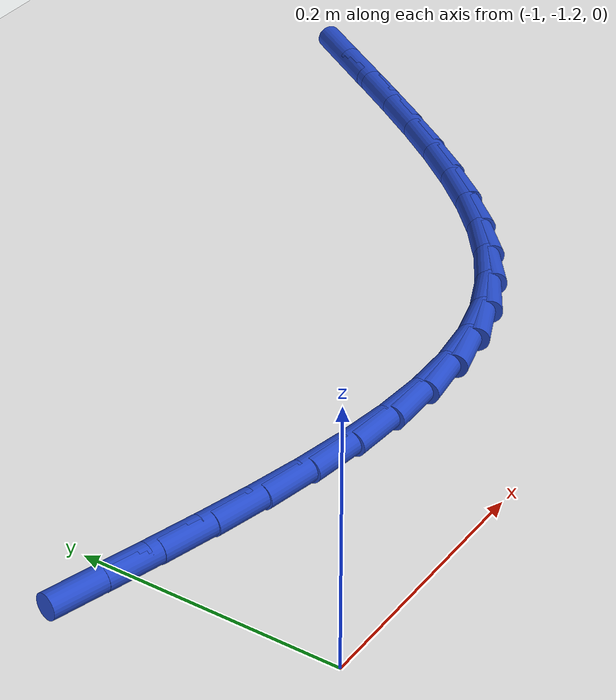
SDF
<sdf version="1.6">
 <world name="default">
  <model name="ground_plane">
   <static>1</static>
   <link name="link">
    <collision name="collision">
     <geometry><plane><normal>0 0 1</normal><size>100 100</size></plane></geometry>
     <surface><friction><ode><mu>100</mu><mu2>50</mu2></ode></friction></surface>
    </collision>
    <visual name="visual">
     <cast_shadows>0</cast_shadows>
     <geometry><plane><normal>0 0 1</normal><size>100 100</size></plane></geometry>
     <material>
      <script><uri>file://media/materials/scripts/gazebo.material</uri><name>Gazebo/WhiteGlow</name></script>
     </material>
    </visual>
   </link>
  </model>
  <model name="line">
   <link name="link_119">
    <pose>-1.0254146268963058 -1.0300677457684595 0.01 0 1.57 -0.2883049057883788</pose>
    <collision name="collision">
     <geometry><cylinder><radius>0.01</radius><length>0.08</length></cylinder></geometry>
    </collision>
    <visual name="visual">
     <material>
      <script><name>Gazebo/Blue</name><uri>file://media/materials/scripts/gazebo.material</uri></script>
     </material>
     <geometry><cylinder><radius>0.01</radius><length>0.08</length></cylinder></geometry>
    </visual>
   </link>
   <link name="link_120">
    <pose>-0.9833025822460596 -1.0425568169589936 0.01 0 1.57 -0.281634078913042</pose>
    <collision name="collision">
     <geometry><cylinder><radius>0.01</radius><length>0.08</length></cylinder></geometry>
    </collision>
    <visual name="visual">
     <material>
      <script><name>Gazebo/Blue</name><uri>file://media/materials/scripts/gazebo.material</uri></script>
     </material>
     <geometry><cylinder><radius>0.01</radius><length>0.08</length></cylinder></geometry>
    </visual>
   </link>
   <link name="link_121">
    <pose>-0.9407242988901833 -1.0548757513631877 0.01 0 1.57 -0.2643406625414252</pose>
    <collision name="collision">
     <geometry><cylinder><radius>0.01</radius><length>0.08</length></cylinder></geometry>
    </collision>
    <visual name="visual">
     <material>
      <script><name>Gazebo/Blue</name><uri>file://media/materials/scripts/gazebo.material</uri></script>
     </material>
     <geometry><cylinder><radius>0.01</radius><length>0.08</length></cylinder></geometry>
    </visual>
   </link>
   <link name="link_122">
    <pose>-0.89797236816318 -1.066447620991229 0.01 0 1.57 -0.23589892087066344</pose>
    <collision name="collision">
     <geometry><cylinder><radius>0.01</radius><length>0.08</length></cylinder></geometry>
    </collision>
    <visual name="visual">
     <material>
      <script><name>Gazebo/Blue</name><uri>file://media/materials/scripts/gazebo.material</uri></script>
     </material>
     <geometry><cylinder><radius>0.01</radius><length>0.08</length></cylinder></geometry>
    </visual>
   </link>
   <link name="link_123">
    <pose>-0.855339381399551 -1.0766954978533052 0.01 0 1.57 -0.19517792124163297</pose>
    <collision name="collision">
     <geometry><cylinder><radius>0.01</radius><length>0.08</length></cylinder></geometry>
    </collision>
    <visual name="visual">
     <material>
      <script><name>Gazebo/Blue</name><uri>file://media/materials/scripts/gazebo.material</uri></script>
     </material>
     <geometry><cylinder><radius>0.01</radius><length>0.08</length></cylinder></geometry>
    </visual>
   </link>
   <link name="link_124">
    <pose>-0.8131179299337976 -1.085042453959604 0.01 0 1.57 -0.14043470362466073</pose>
    <collision name="collision">
     <geometry><cylinder><radius>0.01</radius><length>0.08</length></cylinder></geometry>
    </collision>
    <visual name="visual">
     <material>
      <script><name>Gazebo/Blue</name><uri>file://media/materials/scripts/gazebo.material</uri></script>
     </material>
     <geometry><cylinder><radius>0.01</radius><length>0.08</length></cylinder></geometry>
    </visual>
   </link>
   <link name="link_125">
    <pose>-0.7716006051004213 -1.0909115613203129 0.01 0 1.57 -0.06934294782650299</pose>
    <collision name="collision">
     <geometry><cylinder><radius>0.01</radius><length>0.08</length></cylinder></geometry>
    </collision>
    <visual name="visual">
     <material>
      <script><name>Gazebo/Blue</name><uri>file://media/materials/scripts/gazebo.material</uri></script>
     </material>
     <geometry><cylinder><radius>0.01</radius><length>0.08</length></cylinder></geometry>
    </visual>
   </link>
   <link name="link_126">
    <pose>-0.7310799982339234 -1.0937258919456196 0.01 0 1.57 0.02083173157755188</pose>
    <collision name="collision">
     <geometry><cylinder><radius>0.01</radius><length>0.08</length></cylinder></geometry>
    </collision>
    <visual name="visual">
     <material>
      <script><name>Gazebo/Blue</name><uri>file://media/materials/scripts/gazebo.material</uri></script>
     </material>
     <geometry><cylinder><radius>0.01</radius><length>0.08</length></cylinder></geometry>
    </visual>
   </link>
   <link name="link_127">
    <pose>-0.6918487006688067 -1.0929085178457116 0.01 0 1.57 0.13271038664936582</pose>
    <collision name="collision">
     <geometry><cylinder><radius>0.01</radius><length>0.08</length></cylinder></geometry>
    </collision>
    <visual name="visual">
     <material>
      <script><name>Gazebo/Blue</name><uri>file://media/materials/scripts/gazebo.material</uri></script>
     </material>
     <geometry><cylinder><radius>0.01</radius><length>0.08</length></cylinder></geometry>
    </visual>
   </link>
   <link name="link_128">
    <pose>-0.654199303739572 -1.0878825110307762 0.01 0 1.57 0.2676747650109371</pose>
    <collision name="collision">
     <geometry><cylinder><radius>0.01</radius><length>0.08</length></cylinder></geometry>
    </collision>
    <visual name="visual">
     <material>
      <script><name>Gazebo/Blue</name><uri>file://media/materials/scripts/gazebo.material</uri></script>
     </material>
     <geometry><cylinder><radius>0.01</radius><length>0.08</length></cylinder></geometry>
    </visual>
   </link>
   <link name="link_129">
    <pose>-0.6184243703939921 -1.0780710064300452 0.01 0 1.57 0.4172734666065643</pose>
    <collision name="collision">
     <geometry><cylinder><radius>0.01</radius><length>0.08</length></cylinder></geometry>
    </collision>
    <visual name="visual">
     <material>
      <script><name>Gazebo/Blue</name><uri>file://media/materials/scripts/gazebo.material</uri></script>
     </material>
     <geometry><cylinder><radius>0.01</radius><length>0.08</length></cylinder></geometry>
    </visual>
   </link>
   <link name="link_130">
    <pose>-0.5847129698539327 -1.0631265323006 0.01 0 1.57 0.5542261738812697</pose>
    <collision name="collision">
     <geometry><cylinder><radius>0.01</radius><length>0.08</length></cylinder></geometry>
    </collision>
    <visual name="visual">
     <material>
      <script><name>Gazebo/Blue</name><uri>file://media/materials/scripts/gazebo.material</uri></script>
     </material>
     <geometry><cylinder><radius>0.01</radius><length>0.08</length></cylinder></geometry>
    </visual>
   </link>
   <link name="link_131">
    <pose>-0.5529177287035723 -1.043447340329749 0.01 0 1.57 0.6704434157071164</pose>
    <collision name="collision">
     <geometry><cylinder><radius>0.01</radius><length>0.08</length></cylinder></geometry>
    </collision>
    <visual name="visual">
     <material>
      <script><name>Gazebo/Blue</name><uri>file://media/materials/scripts/gazebo.material</uri></script>
     </material>
     <geometry><cylinder><radius>0.01</radius><length>0.08</length></cylinder></geometry>
    </visual>
   </link>
   <link name="link_132">
    <pose>-0.5228230240084676 -1.0195829569227994 0.01 0 1.57 0.7656227001546723</pose>
    <collision name="collision">
     <geometry><cylinder><radius>0.01</radius><length>0.08</length></cylinder></geometry>
    </collision>
    <visual name="visual">
     <material>
      <script><name>Gazebo/Blue</name><uri>file://media/materials/scripts/gazebo.material</uri></script>
     </material>
     <geometry><cylinder><radius>0.01</radius><length>0.08</length></cylinder></geometry>
    </visual>
   </link>
   <link name="link_133">
    <pose>-0.49421323283417434 -0.992082908485058 0.01 0 1.57 0.8413705729506546</pose>
    <collision name="collision">
     <geometry><cylinder><radius>0.01</radius><length>0.08</length></cylinder></geometry>
    </collision>
    <visual name="visual">
     <material>
      <script><name>Gazebo/Blue</name><uri>file://media/materials/scripts/gazebo.material</uri></script>
     </material>
     <geometry><cylinder><radius>0.01</radius><length>0.08</length></cylinder></geometry>
    </visual>
   </link>
   <link name="link_134">
    <pose>-0.46687273224624815 -0.961496721421832 0.01 0 1.57 0.8999592917167103</pose>
    <collision name="collision">
     <geometry><cylinder><radius>0.01</radius><length>0.08</length></cylinder></geometry>
    </collision>
    <visual name="visual">
     <material>
      <script><name>Gazebo/Blue</name><uri>file://media/materials/scripts/gazebo.material</uri></script>
     </material>
     <geometry><cylinder><radius>0.01</radius><length>0.08</length></cylinder></geometry>
    </visual>
   </link>
   <link name="link_135">
    <pose>-0.4405858993102448 -0.9283739221384277 0.01 0 1.57 0.943597888991565</pose>
    <collision name="collision">
     <geometry><cylinder><radius>0.01</radius><length>0.08</length></cylinder></geometry>
    </collision>
    <visual name="visual">
     <material>
      <script><name>Gazebo/Blue</name><uri>file://media/materials/scripts/gazebo.material</uri></script>
     </material>
     <geometry><cylinder><radius>0.01</radius><length>0.08</length></cylinder></geometry>
    </visual>
   </link>
   <link name="link_136">
    <pose>-0.41513711109171997 -0.8932640370401518 0.01 0 1.57 0.9741043426938448</pose>
    <collision name="collision">
     <geometry><cylinder><radius>0.01</radius><length>0.08</length></cylinder></geometry>
    </collision>
    <visual name="visual">
     <material>
      <script><name>Gazebo/Blue</name><uri>file://media/materials/scripts/gazebo.material</uri></script>
     </material>
     <geometry><cylinder><radius>0.01</radius><length>0.08</length></cylinder></geometry>
    </visual>
   </link>
   <link name="link_137">
    <pose>-0.3903107446562303 -0.8567165925323122 0.01 0 1.57 0.9927983327116154</pose>
    <collision name="collision">
     <geometry><cylinder><radius>0.01</radius><length>0.08</length></cylinder></geometry>
    </collision>
    <visual name="visual">
     <material>
      <script><name>Gazebo/Blue</name><uri>file://media/materials/scripts/gazebo.material</uri></script>
     </material>
     <geometry><cylinder><radius>0.01</radius><length>0.08</length></cylinder></geometry>
    </visual>
   </link>
   <link name="link_138">
    <pose>-0.3658911770693312 -0.8192811150202153 0.01 0 1.57 1.0004876088535797</pose>
    <collision name="collision">
     <geometry><cylinder><radius>0.01</radius><length>0.08</length></cylinder></geometry>
    </collision>
    <visual name="visual">
     <material>
      <script><name>Gazebo/Blue</name><uri>file://media/materials/scripts/gazebo.material</uri></script>
     </material>
     <geometry><cylinder><radius>0.01</radius><length>0.08</length></cylinder></geometry>
    </visual>
   </link>
   <link name="link_139">
    <pose>-0.3416627853965787 -0.7815071309091678 0.01 0 1.57 0.9974793440600865</pose>
    <collision name="collision">
     <geometry><cylinder><radius>0.01</radius><length>0.08</length></cylinder></geometry>
    </collision>
    <visual name="visual">
     <material>
      <script><name>Gazebo/Blue</name><uri>file://media/materials/scripts/gazebo.material</uri></script>
     </material>
     <geometry><cylinder><radius>0.01</radius><length>0.08</length></cylinder></geometry>
    </visual>
   </link>
  </model>
 </world>
</sdf>
